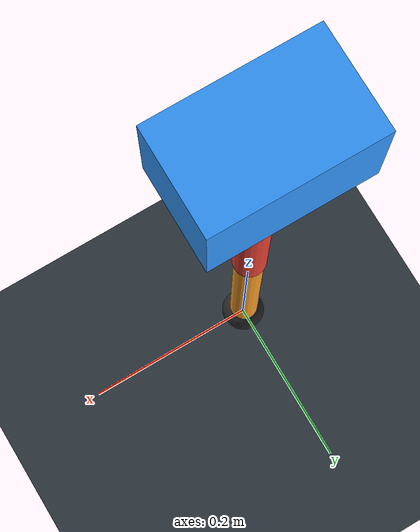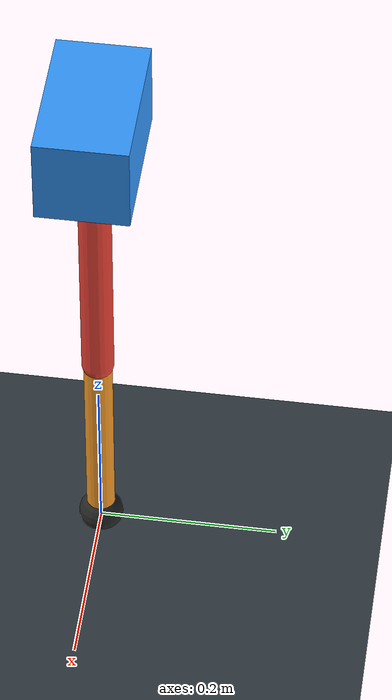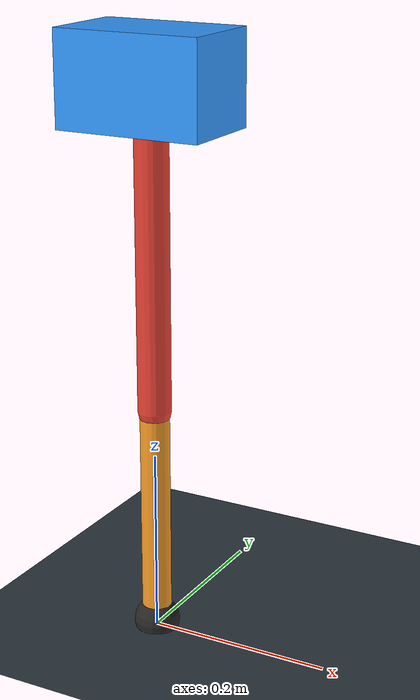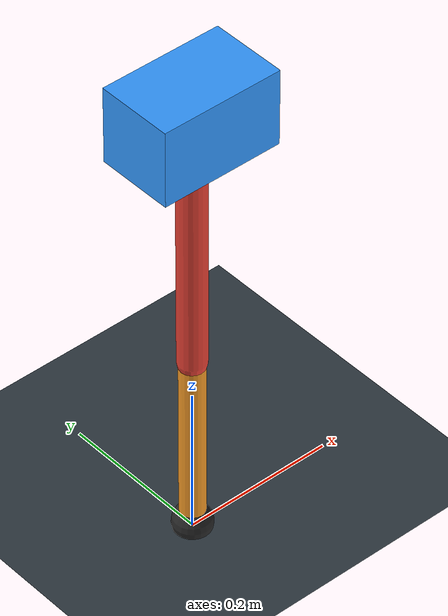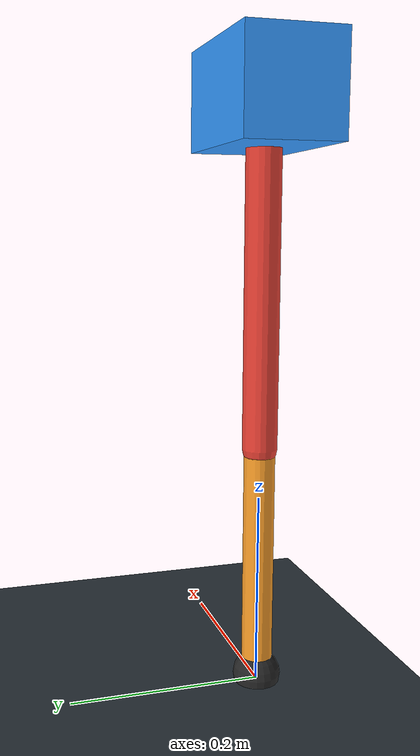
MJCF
<mujoco model="single_axis_two_bar">
  <compiler angle="radian" inertiafromgeom="true"/>
  <option timestep="0.001" integrator="implicitfast" gravity="0 0 -9.81"/>
  <default>
    <joint damping="0.08"/>
    <geom friction="1.2 0.01 0.0001" condim="3"/>
  </default>
  <worldbody>
    <geom name="floor" type="plane" size="5 5 0.1" rgba="0.18 0.22 0.25 1"/>
    <body name="carriage" pos="0 0 0.6023740626805177">
      <joint name="pole_slide" type="slide" axis="0 0 1"/>
      <geom name="payload" type="box" size="0.08 0.05 0.05" mass="2.480054731585395" rgba="0.2 0.6 1 1"/>
      <body name="thigh" pos="0 0 0">
        <joint name="hip" type="hinge" axis="0 1 0"/>
        <geom name="thigh_link" type="capsule" fromto="0 0 0 0 0 -0.3498026384676181" size="0.018" mass="0.2492390021422331" rgba="0.9 0.25 0.2 1"/>
        <body name="shank" pos="0 0 -0.3498026384676181">
          <joint name="knee" type="hinge" axis="0 1 0"/>
          <geom name="shank_link" type="capsule" fromto="0 0 0 0 0 -0.2454283539865239" size="0.016" mass="0.17487094526496727" rgba="0.95 0.6 0.15 1"/>
          <geom name="foot" type="sphere" pos="0 0 -0.2454283539865239" size="0.025" mass="0.03" rgba="0.15 0.15 0.15 1"/>
          <site name="toe" pos="0 0 -0.2454283539865239" size="0.008"/>
        </body>
      </body>
    </body>
  </worldbody>
  <actuator>
    <motor name="hip_motor" joint="hip" ctrlrange="-27.982574235567693 27.982574235567693"/>
    <motor name="knee_motor" joint="knee" ctrlrange="-104.57060155323637 104.57060155323637"/>
  </actuator>
</mujoco>
